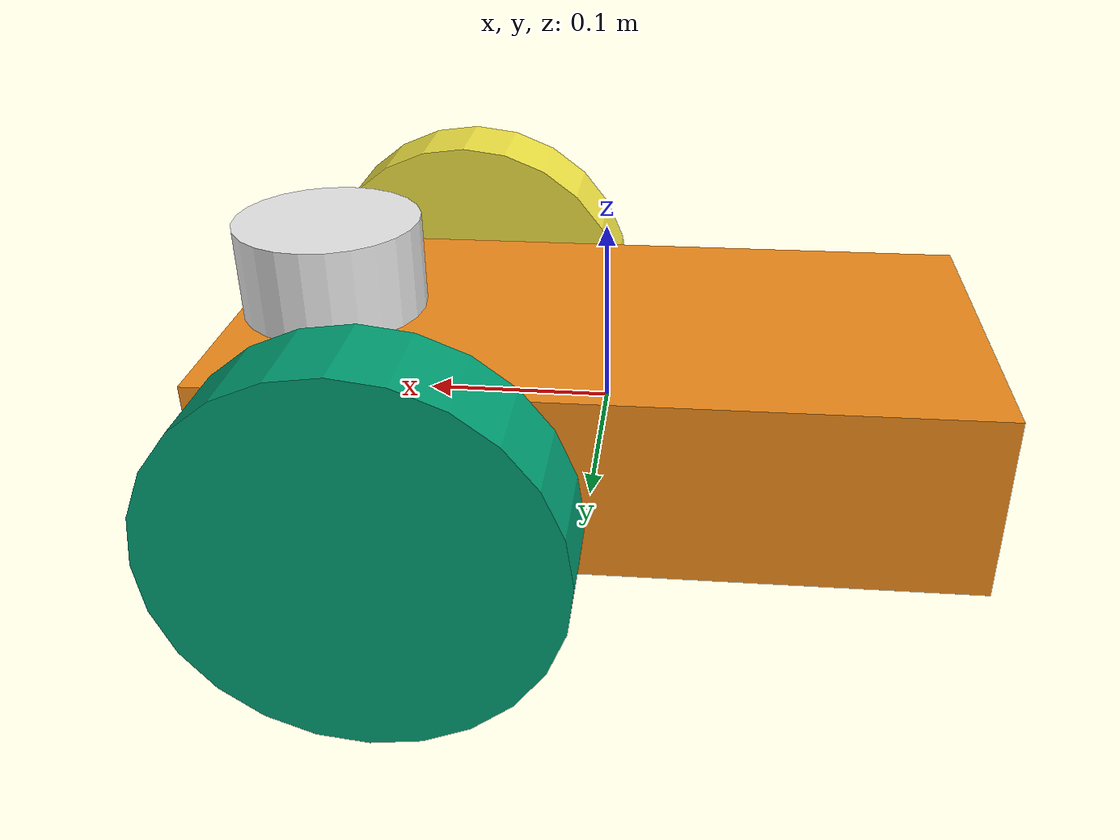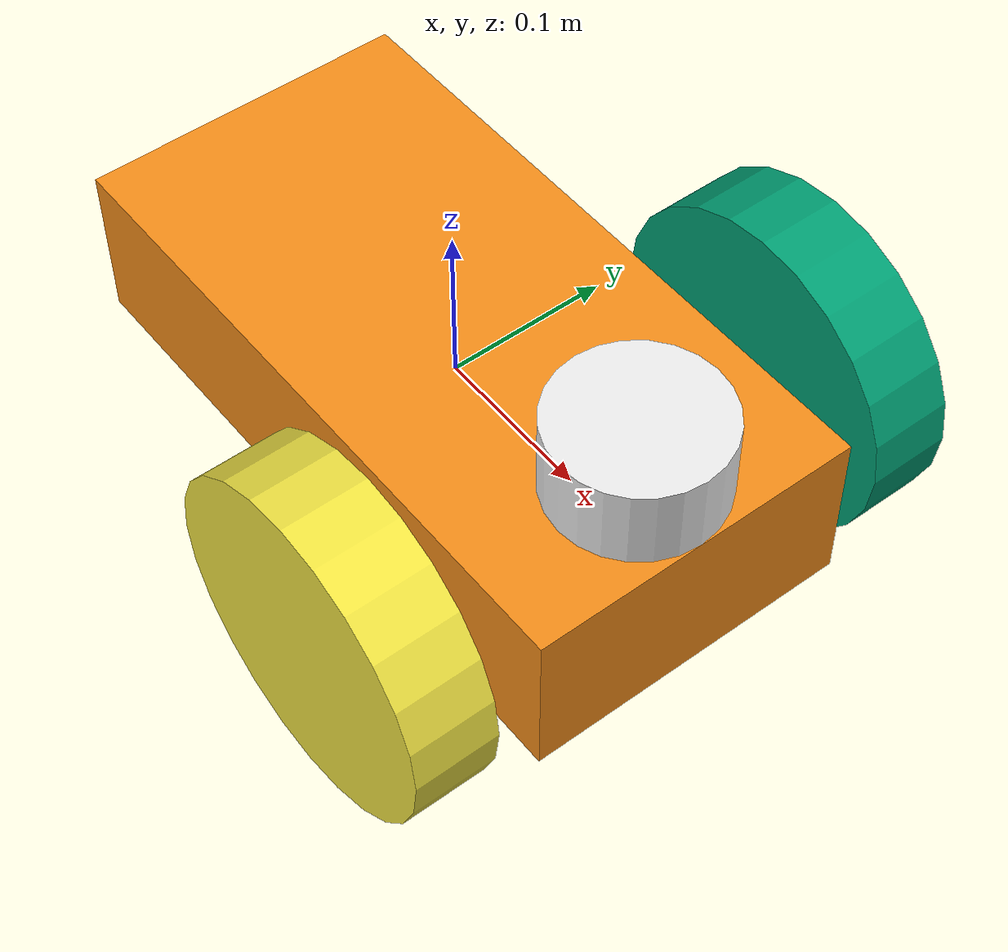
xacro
<?xml version='1.0'?>

<robot name="myrobot" xmlns:xacro="http://www.ros.org/wiki/xacro">

  <xacro:include filename="$(find mybot_description)/urdf/mybot.gazebo" />
  <xacro:include filename="$(find mybot_description)/urdf/materials.xacro" />
  <xacro:include filename="$(find mybot_description)/urdf/macros.xacro" />

  <link name='chassis'>
    <pose>0 0 0.1 0 0 0</pose>

    <inertial>
      <mass value="10.0"/>
      <origin xyz="0.0 0 0.1" rpy=" 0 0 0"/>
      <inertia
          ixx="0.5" ixy="0" ixz="0"
          iyy="1.0" iyz="0"
          izz="0.1"
      />
    </inertial>

    <collision name='collision'>
      <geometry>
        <box size=".4 .2 .1"/>
      </geometry>
    </collision>

    <visual name='chassis_visual'>
      <origin xyz="0 0 0" rpy=" 0 0 0"/>
      <geometry>
        <box size=".4 .2 .1"/>
      </geometry>
    </visual>

    <collision name='caster_collision'>
      <origin xyz="-0.15 0 -0.05" rpy=" 0 0 0"/>
      <geometry>
        <sphere radius="0.05"/>
      </geometry>
      <surface>
        <friction>
          <ode>
            <mu>0</mu>
            <mu2>0</mu2>
            <slip1>1.0</slip1>
            <slip2>1.0</slip2>
          </ode>
        </friction>
      </surface>
    </collision>

    <visual name='caster_visual'>
      <origin xyz="-0.15 0 -0.05" rpy=" 0 0 0"/>
      <geometry>
        <sphere radius="0.05"/>
      </geometry>
    </visual>
  </link>
 <link name="sensor_laser">
    <inertial>
        <origin xyz="0 0 0" rpy="0 0 0" />
        <mass value="1" />
        <xacro:cylinder_inertia mass="1" r="0.05" l="0.1" />
    </inertial>

    <visual>
        <origin xyz="0 0 0" rpy="0 0 0" />
        <geometry>
        <cylinder radius="0.05" length="0.1"/>
        </geometry>
        <material name="white" />
    </visual>

    <collision>
        <origin xyz="0 0 0" rpy="0 0 0"/>
        <geometry>
        <cylinder radius="0.05" length="0.1"/>
        </geometry>
    </collision>
    </link>

    <joint name="joint_sensor_laser" type="fixed">
    <origin xyz="0.15 0 0.05" rpy="0 0 0"/>
    <parent link="chassis"/>
    <child link="sensor_laser"/>
  </joint>

  <link name="left_wheel">
    <!--origin xyz="0.1 0.13 0.1" rpy="0 1.5707 1.5707"/-->
    <collision name="collision">
      <origin xyz="0 0 0" rpy="0 1.5707 1.5707"/>
      <geometry>
        <cylinder radius="0.1" length="0.05"/>
      </geometry>
    </collision>
    <visual name="left_wheel_visual">
      <origin xyz="0 0 0" rpy="0 1.5707 1.5707"/>
      <geometry>
        <cylinder radius="0.1" length="0.05"/>
      </geometry>
    </visual>
    <inertial>
      <origin xyz="0 0 0" rpy="0 1.5707 1.5707"/>
      <mass value="5"/>
      <xacro:cylinder_inertia  mass="5" r="0.1" l="0.05"/>
      <inertia
        ixx="1.0" ixy="0.0" ixz="0.0"
        iyy="1.0" iyz="0.0"
        izz="1.0"/>
    </inertial>
  </link>

  <link name="right_wheel">
    <!--origin xyz="0.1 -0.13 0.1" rpy="0 1.5707 1.5707"/-->
    <collision name="collision">
      <origin xyz="0 0 0" rpy="0 1.5707 1.5707"/>
      <geometry>
        <cylinder radius="0.1" length="0.05"/>
      </geometry>
    </collision>
    <visual name="right_wheel_visual">
      <origin xyz="0 0 0" rpy="0 1.5707 1.5707"/>
      <geometry>
        <cylinder radius="0.1" length="0.05"/>
      </geometry>
    </visual>
    <inertial>
      <origin xyz="0 0 0" rpy="0 1.5707 1.5707"/>
      <mass value="5"/>
      <xacro:cylinder_inertia  mass="5" r="0.1" l="0.05"/>
      <inertia
        ixx="1.0" ixy="0.0" ixz="0.0"
        iyy="1.0" iyz="0.0"
        izz="1.0"/>
    </inertial>
  </link>

  <joint type="continuous" name="left_wheel_hinge">
    <origin xyz="0.1 0.15 0" rpy="0 0 0"/>
    <child link="left_wheel"/>
    <parent link="chassis"/>
    <axis xyz="0 1 0" rpy="0 0 0"/>
    <limit effort="100" velocity="100"/>
    <joint_properties damping="0.0" friction="0.0"/>
  </joint>

  <joint type="continuous" name="right_wheel_hinge">
    <origin xyz="0.1 -0.15 0" rpy="0 0 0"/>
    <child link="right_wheel"/>
    <parent link="chassis"/>
    <axis xyz="0 1 0" rpy="0 0 0"/>
    <limit effort="100" velocity="100"/>
    <joint_properties damping="0.0" friction="0.0"/>
  </joint>

</robot>

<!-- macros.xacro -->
<robot>

<macro name="cylinder_inertia" params="mass r l">
  <inertia  ixx="${mass*(3*r*r+l*l)/12}" ixy = "0" ixz = "0"
            iyy="${mass*(3*r*r+l*l)/12}" iyz = "0"
            izz="${mass*(r*r)/2}" />
</macro>

</robot>
